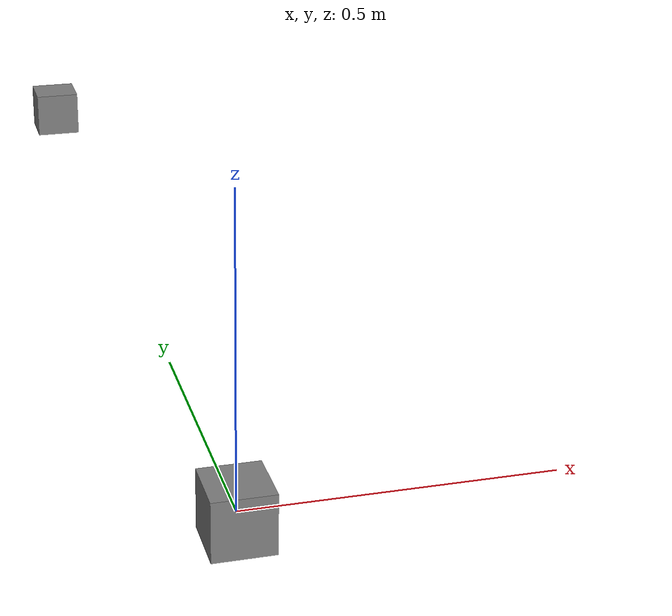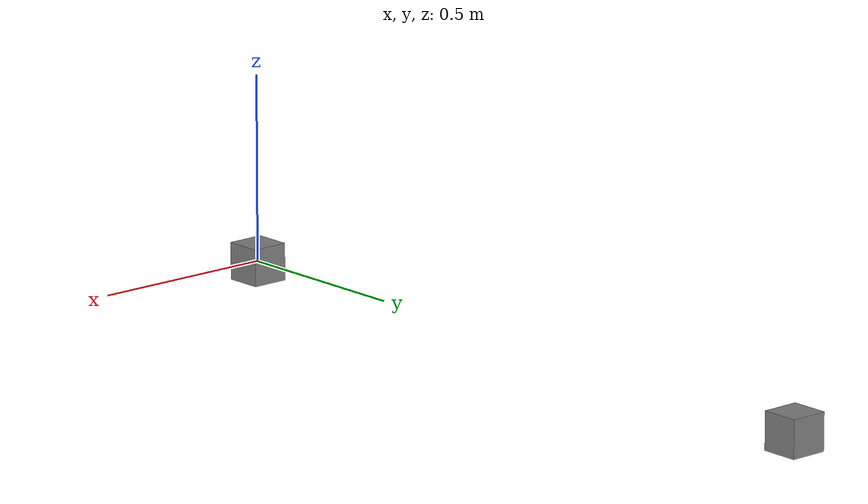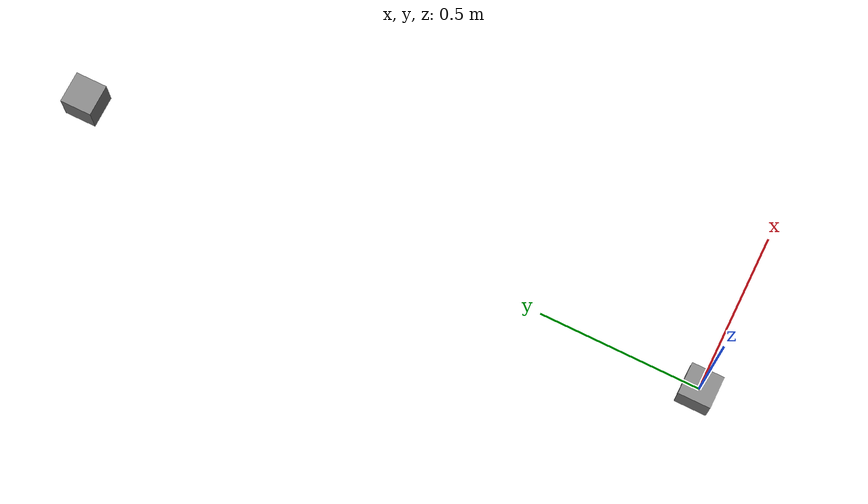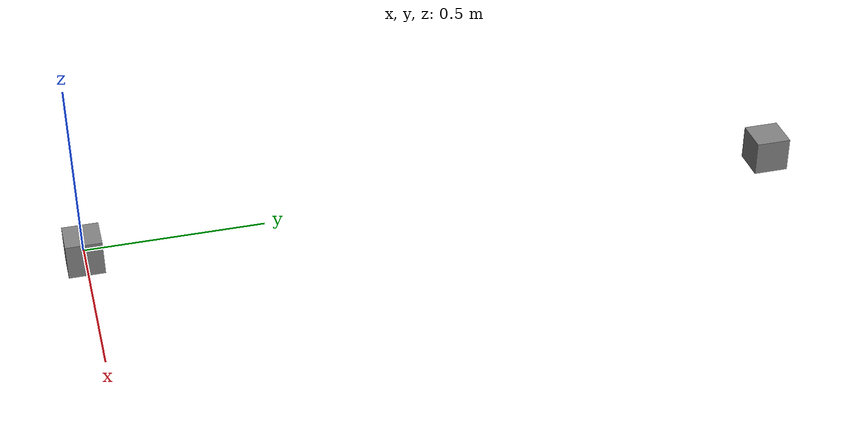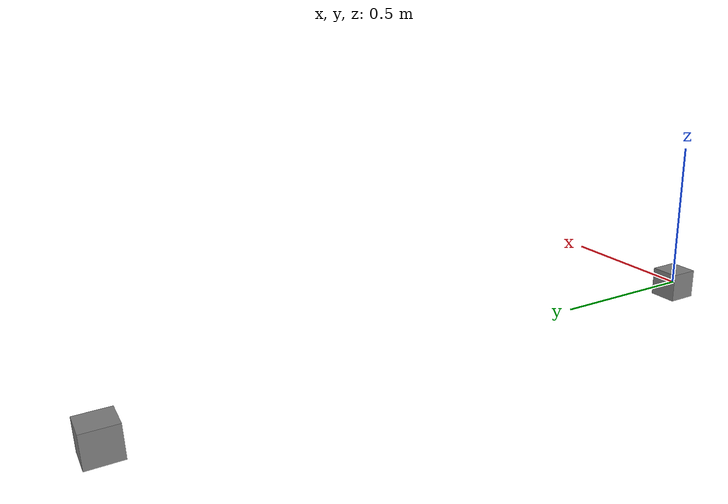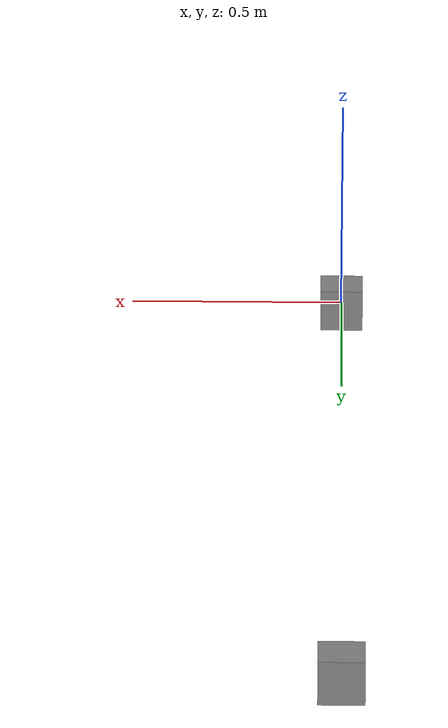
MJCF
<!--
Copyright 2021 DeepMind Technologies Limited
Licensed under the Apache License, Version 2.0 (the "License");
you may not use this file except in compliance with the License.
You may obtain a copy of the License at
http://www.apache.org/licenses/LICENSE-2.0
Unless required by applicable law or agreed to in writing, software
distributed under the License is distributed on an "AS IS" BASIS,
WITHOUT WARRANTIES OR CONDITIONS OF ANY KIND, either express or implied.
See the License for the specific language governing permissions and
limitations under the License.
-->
<mujoco>
  <!--
  body2 is free, but because it's offset on y it wants to rotate about x due to gravity on z. The
  connect prevents that, so the torque sensor should record the weight*offset of the second body.
  -->
  <option gravity="0 0 -1"/>

  <default>
    <!-- A cube of size 0.1^3 with density of 1000 has mass of 1. -->
    <geom size="0.05 0.05 0.05" type="box"/>
  </default>

  <worldbody>
    <body name="body1">
      <geom/>
      <site name="sensor"/>
    </body>
    <body name="body2" pos="0 2 0">
      <freejoint/>
      <geom/>
    </body>
  </worldbody>

  <equality>
    <weld body1="body1" body2="body2" anchor="0 0 0" torquescale="0"/>
  </equality>

  <sensor>
    <torque site="sensor" user="2 0 0"/>
  </sensor>
</mujoco>
